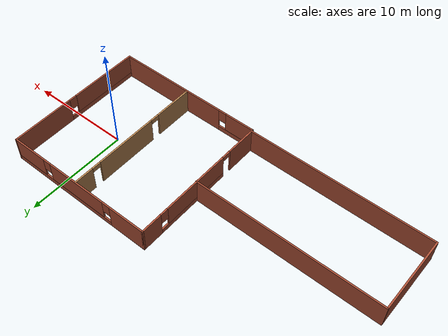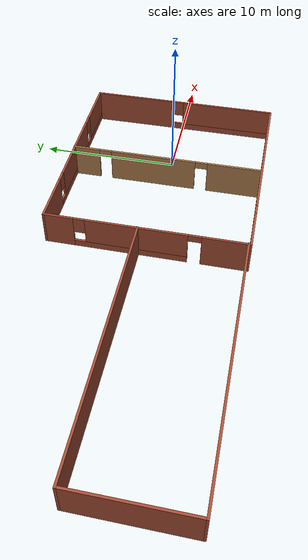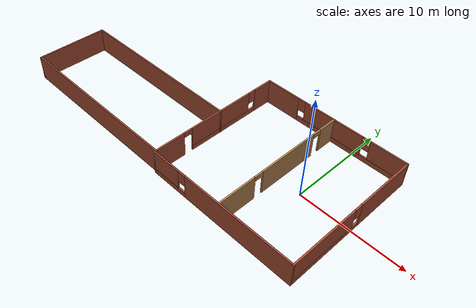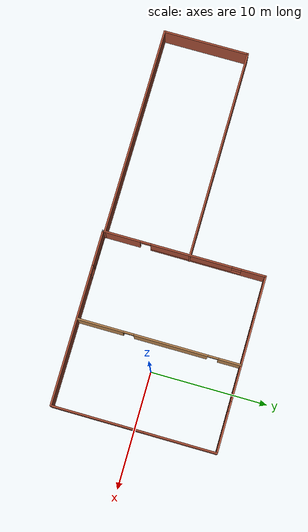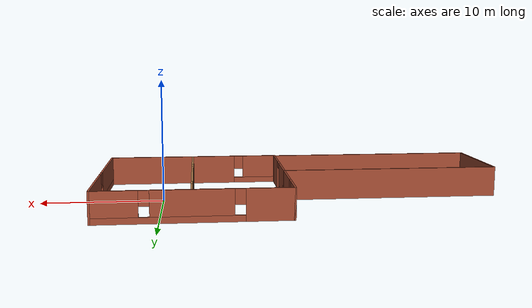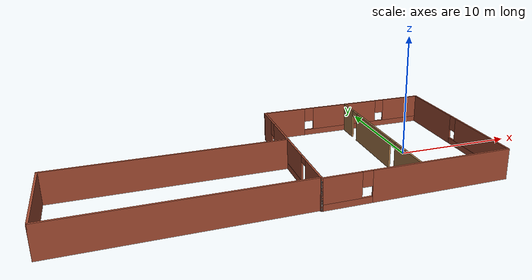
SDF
<?xml version='1.0'?>
<sdf version='1.6'>
  <model name='building'>
    <pose frame=''>-11.5372 0 0 0 -0 0</pose>
    <link name='Wall_17'>
      <pose frame=''>1.53722 0 0 0 0 -1.5708</pose>
      <visual name='Wall_17_Visual_0'>
        <pose frame=''>-6.00099 0 1.25 0 -0 0</pose>
        <geometry>
          <box>
            <size>2.14802 0.15 2.5</size>
          </box>
        </geometry>
        <material>
          <script>
            <uri>file://media/materials/scripts/gazebo.material</uri>
            <name>Gazebo/Bricks</name>
          </script>
          <ambient>1 1 1 1</ambient>
        </material>
        <meta>
          <layer>0</layer>
        </meta>
      </visual>
      <collision name='Wall_17_Collision_0'>
        <geometry>
          <box>
            <size>2.14802 0.15 2.5</size>
          </box>
        </geometry>
        <pose frame=''>-6.00099 0 1.25 0 -0 0</pose>
      </collision>
      <visual name='Wall_17_Visual_1'>
        <pose frame=''>5.42921 0 1.25 0 -0 0</pose>
        <geometry>
          <box>
            <size>3.29158 0.15 2.5</size>
          </box>
        </geometry>
        <material>
          <script>
            <uri>file://media/materials/scripts/gazebo.material</uri>
            <name>Gazebo/Bricks</name>
          </script>
          <ambient>1 1 1 1</ambient>
        </material>
        <meta>
          <layer>0</layer>
        </meta>
      </visual>
      <collision name='Wall_17_Collision_1'>
        <geometry>
          <box>
            <size>3.29158 0.15 2.5</size>
          </box>
        </geometry>
        <pose frame=''>5.42921 0 1.25 0 -0 0</pose>
      </collision>
      <visual name='Wall_17_Visual_2'>
        <pose frame=''>-1.02178 0 0.25 0 -0 0</pose>
        <geometry>
          <box>
            <size>7.8104 0.15 0.5</size>
          </box>
        </geometry>
        <material>
          <script>
            <uri>file://media/materials/scripts/gazebo.material</uri>
            <name>Gazebo/Bricks</name>
          </script>
          <ambient>1 1 1 1</ambient>
        </material>
        <meta>
          <layer>0</layer>
        </meta>
      </visual>
      <collision name='Wall_17_Collision_2'>
        <geometry>
          <box>
            <size>7.8104 0.15 0.5</size>
          </box>
        </geometry>
        <pose frame=''>-1.02178 0 0.25 0 -0 0</pose>
      </collision>
      <visual name='Wall_17_Visual_3'>
        <pose frame=''>-0.621784 0 1.5 0 -0 0</pose>
        <geometry>
          <box>
            <size>7.0104 0.15 2</size>
          </box>
        </geometry>
        <material>
          <script>
            <uri>file://media/materials/scripts/gazebo.material</uri>
            <name>Gazebo/Bricks</name>
          </script>
          <ambient>1 1 1 1</ambient>
        </material>
        <meta>
          <layer>0</layer>
        </meta>
      </visual>
      <collision name='Wall_17_Collision_3'>
        <geometry>
          <box>
            <size>7.0104 0.15 2</size>
          </box>
        </geometry>
        <pose frame=''>-0.621784 0 1.5 0 -0 0</pose>
      </collision>
      <visual name='Wall_17_Visual_4'>
        <pose frame=''>-4.52698 0 1.9 0 -0 0</pose>
        <geometry>
          <box>
            <size>0.8 0.15 1.2</size>
          </box>
        </geometry>
        <material>
          <script>
            <uri>file://media/materials/scripts/gazebo.material</uri>
            <name>Gazebo/Bricks</name>
          </script>
          <ambient>1 1 1 1</ambient>
        </material>
        <meta>
          <layer>0</layer>
        </meta>
      </visual>
      <collision name='Wall_17_Collision_4'>
        <geometry>
          <box>
            <size>0.8 0.15 1.2</size>
          </box>
        </geometry>
        <pose frame=''>-4.52698 0 1.9 0 -0 0</pose>
      </collision>
      <visual name='Wall_17_Visual_5'>
        <pose frame=''>3.33342 0 2.25 0 -0 0</pose>
        <geometry>
          <box>
            <size>0.9 0.15 0.5</size>
          </box>
        </geometry>
        <material>
          <script>
            <uri>file://media/materials/scripts/gazebo.material</uri>
            <name>Gazebo/Bricks</name>
          </script>
          <ambient>1 1 1 1</ambient>
        </material>
        <meta>
          <layer>0</layer>
        </meta>
      </visual>
      <collision name='Wall_17_Collision_5'>
        <geometry>
          <box>
            <size>0.9 0.15 0.5</size>
          </box>
        </geometry>
        <pose frame=''>3.33342 0 2.25 0 -0 0</pose>
      </collision>
    </link>
    <link name='Wall_19'>
      <pose frame=''>9.14245 0.034967 0 0 0 -1.5708</pose>
      <visual name='Wall_19_Visual_0'>
        <pose frame=''>-6.0178 0 1.25 0 -0 0</pose>
        <geometry>
          <box>
            <size>1.9644 0.15 2.5</size>
          </box>
        </geometry>
        <material>
          <script>
            <uri>file://media/materials/scripts/gazebo.material</uri>
            <name>Gazebo/Wood</name>
          </script>
          <ambient>1 1 1 1</ambient>
        </material>
        <meta>
          <layer>0</layer>
        </meta>
      </visual>
      <collision name='Wall_19_Collision_0'>
        <geometry>
          <box>
            <size>1.9644 0.15 2.5</size>
          </box>
        </geometry>
        <pose frame=''>-6.0178 0 1.25 0 -0 0</pose>
      </collision>
      <visual name='Wall_19_Visual_1'>
        <pose frame=''>-0.982911 0 1.25 0 -0 0</pose>
        <geometry>
          <box>
            <size>6.30537 0.15 2.5</size>
          </box>
        </geometry>
        <material>
          <script>
            <uri>file://media/materials/scripts/gazebo.material</uri>
            <name>Gazebo/Wood</name>
          </script>
          <ambient>1 1 1 1</ambient>
        </material>
        <meta>
          <layer>0</layer>
        </meta>
      </visual>
      <collision name='Wall_19_Collision_1'>
        <geometry>
          <box>
            <size>6.30537 0.15 2.5</size>
          </box>
        </geometry>
        <pose frame=''>-0.982911 0 1.25 0 -0 0</pose>
      </collision>
      <visual name='Wall_19_Visual_2'>
        <pose frame=''>5.03489 0 1.25 0 -0 0</pose>
        <geometry>
          <box>
            <size>3.93023 0.15 2.5</size>
          </box>
        </geometry>
        <material>
          <script>
            <uri>file://media/materials/scripts/gazebo.material</uri>
            <name>Gazebo/Wood</name>
          </script>
          <ambient>1 1 1 1</ambient>
        </material>
        <meta>
          <layer>0</layer>
        </meta>
      </visual>
      <collision name='Wall_19_Collision_2'>
        <geometry>
          <box>
            <size>3.93023 0.15 2.5</size>
          </box>
        </geometry>
        <pose frame=''>5.03489 0 1.25 0 -0 0</pose>
      </collision>
      <visual name='Wall_19_Visual_3'>
        <pose frame=''>-4.58559 0 2.25 0 -0 0</pose>
        <geometry>
          <box>
            <size>0.9 0.15 0.5</size>
          </box>
        </geometry>
        <material>
          <script>
            <uri>file://media/materials/scripts/gazebo.material</uri>
            <name>Gazebo/Wood</name>
          </script>
          <ambient>1 1 1 1</ambient>
        </material>
        <meta>
          <layer>0</layer>
        </meta>
      </visual>
      <collision name='Wall_19_Collision_3'>
        <geometry>
          <box>
            <size>0.9 0.15 0.5</size>
          </box>
        </geometry>
        <pose frame=''>-4.58559 0 2.25 0 -0 0</pose>
      </collision>
      <visual name='Wall_19_Visual_4'>
        <pose frame=''>2.61977 0 2.25 0 -0 0</pose>
        <geometry>
          <box>
            <size>0.9 0.15 0.5</size>
          </box>
        </geometry>
        <material>
          <script>
            <uri>file://media/materials/scripts/gazebo.material</uri>
            <name>Gazebo/Wood</name>
          </script>
          <ambient>1 1 1 1</ambient>
        </material>
        <meta>
          <layer>0</layer>
        </meta>
      </visual>
      <collision name='Wall_19_Collision_4'>
        <geometry>
          <box>
            <size>0.9 0.15 0.5</size>
          </box>
        </geometry>
        <pose frame=''>2.61977 0 2.25 0 -0 0</pose>
      </collision>
    </link>
    <link name='Wall_21'>
      <collision name='Wall_21_Collision'>
        <geometry>
          <box>
            <size>18.25 0.15 2.5</size>
          </box>
        </geometry>
        <pose frame=''>0 0 1.25 0 -0 0</pose>
      </collision>
      <visual name='Wall_21_Visual'>
        <pose frame=''>0 0 1.25 0 -0 0</pose>
        <geometry>
          <box>
            <size>18.25 0.15 2.5</size>
          </box>
        </geometry>
        <material>
          <script>
            <uri>file://media/materials/scripts/gazebo.material</uri>
            <name>Gazebo/Bricks</name>
          </script>
          <ambient>1 1 1 1</ambient>
        </material>
        <meta>
          <layer>0</layer>
        </meta>
      </visual>
      <pose frame=''>-7.48722 0.503208 0 0 -0 3.14159</pose>
    </link>
    <link name='Wall_22'>
      <collision name='Wall_22_Collision'>
        <geometry>
          <box>
            <size>7.5 0.15 2.5</size>
          </box>
        </geometry>
        <pose frame=''>0 0 1.25 0 -0 0</pose>
      </collision>
      <visual name='Wall_22_Visual'>
        <pose frame=''>0 0 1.25 0 -0 0</pose>
        <geometry>
          <box>
            <size>7.5 0.15 2.5</size>
          </box>
        </geometry>
        <material>
          <script>
            <uri>file://media/materials/scripts/gazebo.material</uri>
            <name>Gazebo/Bricks</name>
          </script>
          <ambient>1 1 1 1</ambient>
        </material>
        <meta>
          <layer>0</layer>
        </meta>
      </visual>
      <pose frame=''>-16.5372 -3.17179 0 0 0 -1.5708</pose>
    </link>
    <link name='Wall_23'>
      <collision name='Wall_23_Collision'>
        <geometry>
          <box>
            <size>18.25 0.15 2.5</size>
          </box>
        </geometry>
        <pose frame=''>0 0 1.25 0 -0 0</pose>
      </collision>
      <visual name='Wall_23_Visual'>
        <pose frame=''>0 0 1.25 0 -0 0</pose>
        <geometry>
          <box>
            <size>18.25 0.15 2.5</size>
          </box>
        </geometry>
        <material>
          <script>
            <uri>file://media/materials/scripts/gazebo.material</uri>
            <name>Gazebo/Bricks</name>
          </script>
          <ambient>1 1 1 1</ambient>
        </material>
        <meta>
          <layer>0</layer>
        </meta>
      </visual>
      <pose frame=''>-7.48722 -6.84679 0 0 -0 0</pose>
    </link>
    <link name='Wall_4'>
      <pose frame=''>9.03722 7 0 0 -0 0</pose>
      <visual name='Wall_4_Visual_0'>
        <pose frame=''>-5.71283 0 1.25 0 -0 0</pose>
        <geometry>
          <box>
            <size>3.72434 0.15 2.5</size>
          </box>
        </geometry>
        <material>
          <script>
            <uri>file://media/materials/scripts/gazebo.material</uri>
            <name>Gazebo/Bricks</name>
          </script>
          <ambient>1 1 1 1</ambient>
        </material>
        <meta>
          <layer>0</layer>
        </meta>
      </visual>
      <collision name='Wall_4_Collision_0'>
        <geometry>
          <box>
            <size>3.72434 0.15 2.5</size>
          </box>
        </geometry>
        <pose frame=''>-5.71283 0 1.25 0 -0 0</pose>
      </collision>
      <visual name='Wall_4_Visual_1'>
        <pose frame=''>1.86217 0 0.25 0 -0 0</pose>
        <geometry>
          <box>
            <size>11.4257 0.15 0.5</size>
          </box>
        </geometry>
        <material>
          <script>
            <uri>file://media/materials/scripts/gazebo.material</uri>
            <name>Gazebo/Bricks</name>
          </script>
          <ambient>1 1 1 1</ambient>
        </material>
        <meta>
          <layer>0</layer>
        </meta>
      </visual>
      <collision name='Wall_4_Collision_1'>
        <geometry>
          <box>
            <size>11.4257 0.15 0.5</size>
          </box>
        </geometry>
        <pose frame=''>1.86217 0 0.25 0 -0 0</pose>
      </collision>
      <visual name='Wall_4_Visual_2'>
        <pose frame=''>0.058444 0 1.5 0 -0 0</pose>
        <geometry>
          <box>
            <size>6.21822 0.15 2</size>
          </box>
        </geometry>
        <material>
          <script>
            <uri>file://media/materials/scripts/gazebo.material</uri>
            <name>Gazebo/Bricks</name>
          </script>
          <ambient>1 1 1 1</ambient>
        </material>
        <meta>
          <layer>0</layer>
        </meta>
      </visual>
      <collision name='Wall_4_Collision_2'>
        <geometry>
          <box>
            <size>6.21822 0.15 2</size>
          </box>
        </geometry>
        <pose frame=''>0.058444 0 1.5 0 -0 0</pose>
      </collision>
      <visual name='Wall_4_Visual_3'>
        <pose frame=''>5.77128 0 1.5 0 -0 0</pose>
        <geometry>
          <box>
            <size>3.60745 0.15 2</size>
          </box>
        </geometry>
        <material>
          <script>
            <uri>file://media/materials/scripts/gazebo.material</uri>
            <name>Gazebo/Bricks</name>
          </script>
          <ambient>1 1 1 1</ambient>
        </material>
        <meta>
          <layer>0</layer>
        </meta>
      </visual>
      <collision name='Wall_4_Collision_3'>
        <geometry>
          <box>
            <size>3.60745 0.15 2</size>
          </box>
        </geometry>
        <pose frame=''>5.77128 0 1.5 0 -0 0</pose>
      </collision>
      <visual name='Wall_4_Visual_4'>
        <pose frame=''>-3.45066 0 1.9 0 -0 0</pose>
        <geometry>
          <box>
            <size>0.8 0.15 1.2</size>
          </box>
        </geometry>
        <material>
          <script>
            <uri>file://media/materials/scripts/gazebo.material</uri>
            <name>Gazebo/Bricks</name>
          </script>
          <ambient>1 1 1 1</ambient>
        </material>
        <meta>
          <layer>0</layer>
        </meta>
      </visual>
      <collision name='Wall_4_Collision_4'>
        <geometry>
          <box>
            <size>0.8 0.15 1.2</size>
          </box>
        </geometry>
        <pose frame=''>-3.45066 0 1.9 0 -0 0</pose>
      </collision>
      <visual name='Wall_4_Visual_5'>
        <pose frame=''>3.56755 0 1.9 0 -0 0</pose>
        <geometry>
          <box>
            <size>0.8 0.15 1.2</size>
          </box>
        </geometry>
        <material>
          <script>
            <uri>file://media/materials/scripts/gazebo.material</uri>
            <name>Gazebo/Bricks</name>
          </script>
          <ambient>1 1 1 1</ambient>
        </material>
        <meta>
          <layer>0</layer>
        </meta>
      </visual>
      <collision name='Wall_4_Collision_5'>
        <geometry>
          <box>
            <size>0.8 0.15 1.2</size>
          </box>
        </geometry>
        <pose frame=''>3.56755 0 1.9 0 -0 0</pose>
      </collision>
    </link>
    <link name='Wall_5'>
      <pose frame=''>16.5372 0 0 0 0 -1.5708</pose>
      <visual name='Wall_5_Visual_0'>
        <pose frame=''>-3.94232 0 1.25 0 -0 0</pose>
        <geometry>
          <box>
            <size>6.26537 0.15 2.5</size>
          </box>
        </geometry>
        <material>
          <script>
            <uri>file://media/materials/scripts/gazebo.material</uri>
            <name>Gazebo/Bricks</name>
          </script>
          <ambient>1 1 1 1</ambient>
        </material>
        <meta>
          <layer>0</layer>
        </meta>
      </visual>
      <collision name='Wall_5_Collision_0'>
        <geometry>
          <box>
            <size>6.26537 0.15 2.5</size>
          </box>
        </geometry>
        <pose frame=''>-3.94232 0 1.25 0 -0 0</pose>
      </collision>
      <visual name='Wall_5_Visual_1'>
        <pose frame=''>3.13268 0 0.25 0 -0 0</pose>
        <geometry>
          <box>
            <size>7.88463 0.15 0.5</size>
          </box>
        </geometry>
        <material>
          <script>
            <uri>file://media/materials/scripts/gazebo.material</uri>
            <name>Gazebo/Bricks</name>
          </script>
          <ambient>1 1 1 1</ambient>
        </material>
        <meta>
          <layer>0</layer>
        </meta>
      </visual>
      <collision name='Wall_5_Collision_1'>
        <geometry>
          <box>
            <size>7.88463 0.15 0.5</size>
          </box>
        </geometry>
        <pose frame=''>3.13268 0 0.25 0 -0 0</pose>
      </collision>
      <visual name='Wall_5_Visual_2'>
        <pose frame=''>3.53268 0 1.5 0 -0 0</pose>
        <geometry>
          <box>
            <size>7.08463 0.15 2</size>
          </box>
        </geometry>
        <material>
          <script>
            <uri>file://media/materials/scripts/gazebo.material</uri>
            <name>Gazebo/Bricks</name>
          </script>
          <ambient>1 1 1 1</ambient>
        </material>
        <meta>
          <layer>0</layer>
        </meta>
      </visual>
      <collision name='Wall_5_Collision_2'>
        <geometry>
          <box>
            <size>7.08463 0.15 2</size>
          </box>
        </geometry>
        <pose frame=''>3.53268 0 1.5 0 -0 0</pose>
      </collision>
      <visual name='Wall_5_Visual_3'>
        <pose frame=''>-0.409632 0 1.9 0 -0 0</pose>
        <geometry>
          <box>
            <size>0.8 0.15 1.2</size>
          </box>
        </geometry>
        <material>
          <script>
            <uri>file://media/materials/scripts/gazebo.material</uri>
            <name>Gazebo/Bricks</name>
          </script>
          <ambient>1 1 1 1</ambient>
        </material>
        <meta>
          <layer>0</layer>
        </meta>
      </visual>
      <collision name='Wall_5_Collision_3'>
        <geometry>
          <box>
            <size>0.8 0.15 1.2</size>
          </box>
        </geometry>
        <pose frame=''>-0.409632 0 1.9 0 -0 0</pose>
      </collision>
    </link>
    <link name='Wall_6'>
      <pose frame=''>9.03722 -7 0 0 -0 3.14159</pose>
      <visual name='Wall_6_Visual_0'>
        <pose frame=''>-1.93465 0 1.25 0 -0 0</pose>
        <geometry>
          <box>
            <size>11.2807 0.15 2.5</size>
          </box>
        </geometry>
        <material>
          <script>
            <uri>file://media/materials/scripts/gazebo.material</uri>
            <name>Gazebo/Bricks</name>
          </script>
          <ambient>1 1 1 1</ambient>
        </material>
        <meta>
          <layer>0</layer>
        </meta>
      </visual>
      <collision name='Wall_6_Collision_0'>
        <geometry>
          <box>
            <size>11.2807 0.15 2.5</size>
          </box>
        </geometry>
        <pose frame=''>-1.93465 0 1.25 0 -0 0</pose>
      </collision>
      <visual name='Wall_6_Visual_1'>
        <pose frame=''>5.64035 0 0.25 0 -0 0</pose>
        <geometry>
          <box>
            <size>3.8693 0.15 0.5</size>
          </box>
        </geometry>
        <material>
          <script>
            <uri>file://media/materials/scripts/gazebo.material</uri>
            <name>Gazebo/Bricks</name>
          </script>
          <ambient>1 1 1 1</ambient>
        </material>
        <meta>
          <layer>0</layer>
        </meta>
      </visual>
      <collision name='Wall_6_Collision_1'>
        <geometry>
          <box>
            <size>3.8693 0.15 0.5</size>
          </box>
        </geometry>
        <pose frame=''>5.64035 0 0.25 0 -0 0</pose>
      </collision>
      <visual name='Wall_6_Visual_2'>
        <pose frame=''>6.04035 0 1.5 0 -0 0</pose>
        <geometry>
          <box>
            <size>3.0693 0.15 2</size>
          </box>
        </geometry>
        <material>
          <script>
            <uri>file://media/materials/scripts/gazebo.material</uri>
            <name>Gazebo/Bricks</name>
          </script>
          <ambient>1 1 1 1</ambient>
        </material>
        <meta>
          <layer>0</layer>
        </meta>
      </visual>
      <collision name='Wall_6_Collision_2'>
        <geometry>
          <box>
            <size>3.0693 0.15 2</size>
          </box>
        </geometry>
        <pose frame=''>6.04035 0 1.5 0 -0 0</pose>
      </collision>
      <visual name='Wall_6_Visual_3'>
        <pose frame=''>4.1057 0 1.9 0 -0 0</pose>
        <geometry>
          <box>
            <size>0.8 0.15 1.2</size>
          </box>
        </geometry>
        <material>
          <script>
            <uri>file://media/materials/scripts/gazebo.material</uri>
            <name>Gazebo/Bricks</name>
          </script>
          <ambient>1 1 1 1</ambient>
        </material>
        <meta>
          <layer>0</layer>
        </meta>
      </visual>
      <collision name='Wall_6_Collision_3'>
        <geometry>
          <box>
            <size>0.8 0.15 1.2</size>
          </box>
        </geometry>
        <pose frame=''>4.1057 0 1.9 0 -0 0</pose>
      </collision>
    </link>
    <link name='Wall_7'>
      <collision name='Wall_7_Collision'>
        <geometry>
          <box>
            <size>0.15 0.15 2.5</size>
          </box>
        </geometry>
        <pose frame=''>0 0 1.25 0 -0 0</pose>
      </collision>
      <visual name='Wall_7_Visual'>
        <pose frame=''>0 0 1.25 0 -0 0</pose>
        <geometry>
          <box>
            <size>0.15 0.15 2.5</size>
          </box>
        </geometry>
        <material>
          <script>
            <uri>file://media/materials/scripts/gazebo.material</uri>
            <name>Gazebo/Grey</name>
          </script>
          <ambient>1 1 1 1</ambient>
        </material>
        <meta>
          <layer>0</layer>
        </meta>
      </visual>
      <pose frame=''>1.53722 -7 0 0 -0 0</pose>
    </link>
    <static>1</static>
  </model>
</sdf>
